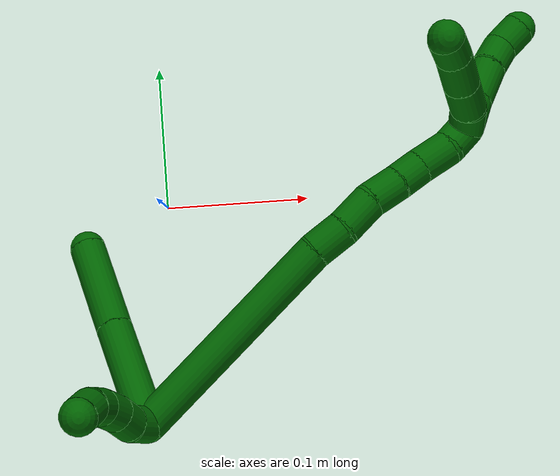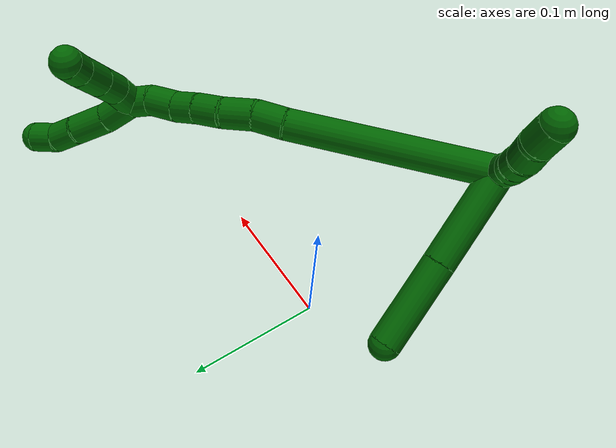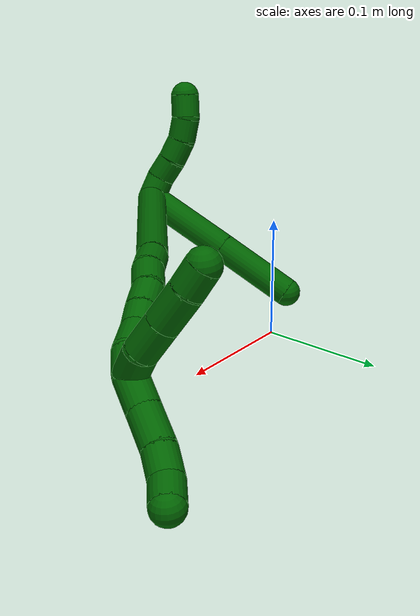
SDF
<sdf version="1.7">
 <world name="default">
  <model name="6">
   <static>0</static>
   <link name="6">
    <collision name="collision-cylinder-e_1_2_8">
     <pose>-0.015532 0.029394 -0.021767 -2.2082 -0.401574 0.767855</pose>
     <geometry><cylinder><radius>0.0125</radius><length>0.079474</length></cylinder></geometry>
     <surface>
      <friction><ode><mu>1.16</mu><mu2>1.16</mu2><slip1>0</slip1><slip2>0</slip2></ode></friction>
      <contact><ode><kp>1e+06</kp><kd>1</kd><max_vel>0</max_vel><min_depth>0.001</min_depth></ode></contact>
     </surface>
    </collision>
    <visual name="visual-cylinder-e_1_2_8">
     <pose>-0.015532 0.029394 -0.021767 -2.2082 -0.401574 0.767855</pose>
     <geometry><cylinder><radius>0.0125</radius><length>0.079474</length></cylinder></geometry>
     <material><ambient>0 0.392157 0.003922 1</ambient></material>
    </visual>
    <collision name="collision-cylinder-e_2_8_6">
     <pose>-0.044521 0.084965 -0.062954 -2.20909 -0.391564 0.750779</pose>
     <geometry><cylinder><radius>0.0125</radius><length>0.070526</length></cylinder></geometry>
     <surface>
      <friction><ode><mu>1.16</mu><mu2>1.16</mu2><slip1>0</slip1><slip2>0</slip2></ode></friction>
      <contact><ode><kp>1e+06</kp><kd>1</kd><max_vel>0</max_vel><min_depth>0.001</min_depth></ode></contact>
     </surface>
    </collision>
    <visual name="visual-cylinder-e_2_8_6">
     <pose>-0.044521 0.084965 -0.062954 -2.20909 -0.391564 0.750779</pose>
     <geometry><cylinder><radius>0.0125</radius><length>0.070526</length></cylinder></geometry>
     <material><ambient>0 0.392157 0.003922 1</ambient></material>
    </visual>
    <collision name="collision-cylinder-e_1_2_9">
     <pose>-0.006084 -1e-05 0.007936 0.001238 -0.654048 -0.00042</pose>
     <geometry><cylinder><radius>0.0125</radius><length>0.02</length></cylinder></geometry>
     <surface>
      <friction><ode><mu>1.16</mu><mu2>1.16</mu2><slip1>0</slip1><slip2>0</slip2></ode></friction>
      <contact><ode><kp>1e+06</kp><kd>1</kd><max_vel>0</max_vel><min_depth>0.001</min_depth></ode></contact>
     </surface>
    </collision>
    <visual name="visual-cylinder-e_1_2_9">
     <pose>-0.006084 -1e-05 0.007936 0.001238 -0.654048 -0.00042</pose>
     <geometry><cylinder><radius>0.0125</radius><length>0.02</length></cylinder></geometry>
     <material><ambient>0 0.392157 0.003922 1</ambient></material>
    </visual>
    <collision name="collision-cylinder-e_2_9_10">
     <pose>-0.017488 0.003167 0.023718 -0.385858 -0.560893 0.112423</pose>
     <geometry><cylinder><radius>0.0125</radius><length>0.02</length></cylinder></geometry>
     <surface>
      <friction><ode><mu>1.16</mu><mu2>1.16</mu2><slip1>0</slip1><slip2>0</slip2></ode></friction>
      <contact><ode><kp>1e+06</kp><kd>1</kd><max_vel>0</max_vel><min_depth>0.001</min_depth></ode></contact>
     </surface>
    </collision>
    <visual name="visual-cylinder-e_2_9_10">
     <pose>-0.017488 0.003167 0.023718 -0.385858 -0.560893 0.112423</pose>
     <geometry><cylinder><radius>0.0125</radius><length>0.02</length></cylinder></geometry>
     <material><ambient>0 0.392157 0.003922 1</ambient></material>
    </visual>
    <collision name="collision-cylinder-e_3_10_11">
     <pose>-0.02806 0.008164 0.039877 -0.214354 -0.553077 0.061051</pose>
     <geometry><cylinder><radius>0.0125</radius><length>0.02</length></cylinder></geometry>
     <surface>
      <friction><ode><mu>1.16</mu><mu2>1.16</mu2><slip1>0</slip1><slip2>0</slip2></ode></friction>
      <contact><ode><kp>1e+06</kp><kd>1</kd><max_vel>0</max_vel><min_depth>0.001</min_depth></ode></contact>
     </surface>
    </collision>
    <visual name="visual-cylinder-e_3_10_11">
     <pose>-0.02806 0.008164 0.039877 -0.214354 -0.553077 0.061051</pose>
     <geometry><cylinder><radius>0.0125</radius><length>0.02</length></cylinder></geometry>
     <material><ambient>0 0.392157 0.003922 1</ambient></material>
    </visual>
    <collision name="collision-cylinder-e_4_11_12">
     <pose>-0.036822 0.010205 0.057553 -0.024702 -0.358553 0.004477</pose>
     <geometry><cylinder><radius>0.0125</radius><length>0.02</length></cylinder></geometry>
     <surface>
      <friction><ode><mu>1.16</mu><mu2>1.16</mu2><slip1>0</slip1><slip2>0</slip2></ode></friction>
      <contact><ode><kp>1e+06</kp><kd>1</kd><max_vel>0</max_vel><min_depth>0.001</min_depth></ode></contact>
     </surface>
    </collision>
    <visual name="visual-cylinder-e_4_11_12">
     <pose>-0.036822 0.010205 0.057553 -0.024702 -0.358553 0.004477</pose>
     <geometry><cylinder><radius>0.0125</radius><length>0.02</length></cylinder></geometry>
     <material><ambient>0 0.392157 0.003922 1</ambient></material>
    </visual>
    <collision name="collision-cylinder-e_5_12_5">
     <pose>-0.043206 0.007605 0.076064 0.300105 -0.291569 -0.04439</pose>
     <geometry><cylinder><radius>0.0125</radius><length>0.02</length></cylinder></geometry>
     <surface>
      <friction><ode><mu>1.16</mu><mu2>1.16</mu2><slip1>0</slip1><slip2>0</slip2></ode></friction>
      <contact><ode><kp>1e+06</kp><kd>1</kd><max_vel>0</max_vel><min_depth>0.001</min_depth></ode></contact>
     </surface>
    </collision>
    <visual name="visual-cylinder-e_5_12_5">
     <pose>-0.043206 0.007605 0.076064 0.300105 -0.291569 -0.04439</pose>
     <geometry><cylinder><radius>0.0125</radius><length>0.02</length></cylinder></geometry>
     <material><ambient>0 0.392157 0.003922 1</ambient></material>
    </visual>
    <collision name="collision-cylinder-e_1_2_13">
     <pose>0.045489 0.065317 0.007159 -1.46163 0.605526 -0.546021</pose>
     <geometry><cylinder><radius>0.0125</radius><length>0.159835</length></cylinder></geometry>
     <surface>
      <friction><ode><mu>1.16</mu><mu2>1.16</mu2><slip1>0</slip1><slip2>0</slip2></ode></friction>
      <contact><ode><kp>1e+06</kp><kd>1</kd><max_vel>0</max_vel><min_depth>0.001</min_depth></ode></contact>
     </surface>
    </collision>
    <visual name="visual-cylinder-e_1_2_13">
     <pose>0.045489 0.065317 0.007159 -1.46163 0.605526 -0.546021</pose>
     <geometry><cylinder><radius>0.0125</radius><length>0.159835</length></cylinder></geometry>
     <material><ambient>0 0.392157 0.003922 1</ambient></material>
    </visual>
    <collision name="collision-cylinder-e_2_13_14">
     <pose>0.099355 0.139653 0.014804 -1.51688 0.747885 -0.711921</pose>
     <geometry><cylinder><radius>0.0125</radius><length>0.024638</length></cylinder></geometry>
     <surface>
      <friction><ode><mu>1.16</mu><mu2>1.16</mu2><slip1>0</slip1><slip2>0</slip2></ode></friction>
      <contact><ode><kp>1e+06</kp><kd>1</kd><max_vel>0</max_vel><min_depth>0.001</min_depth></ode></contact>
     </surface>
    </collision>
    <visual name="visual-cylinder-e_2_13_14">
     <pose>0.099355 0.139653 0.014804 -1.51688 0.747885 -0.711921</pose>
     <geometry><cylinder><radius>0.0125</radius><length>0.024638</length></cylinder></geometry>
     <material><ambient>0 0.392157 0.003922 1</ambient></material>
    </visual>
    <collision name="collision-cylinder-e_3_14_15">
     <pose>0.115323 0.159252 0.013767 -1.7138 0.61738 -0.705395</pose>
     <geometry><cylinder><radius>0.0125</radius><length>0.02622</length></cylinder></geometry>
     <surface>
      <friction><ode><mu>1.16</mu><mu2>1.16</mu2><slip1>0</slip1><slip2>0</slip2></ode></friction>
      <contact><ode><kp>1e+06</kp><kd>1</kd><max_vel>0</max_vel><min_depth>0.001</min_depth></ode></contact>
     </surface>
    </collision>
    <visual name="visual-cylinder-e_3_14_15">
     <pose>0.115323 0.159252 0.013767 -1.7138 0.61738 -0.705395</pose>
     <geometry><cylinder><radius>0.0125</radius><length>0.02622</length></cylinder></geometry>
     <material><ambient>0 0.392157 0.003922 1</ambient></material>
    </visual>
    <collision name="collision-cylinder-e_4_15_16">
     <pose>0.131613 0.177517 0.009939 -1.86224 0.825955 -1.06446</pose>
     <geometry><cylinder><radius>0.0125</radius><length>0.02367</length></cylinder></geometry>
     <surface>
      <friction><ode><mu>1.16</mu><mu2>1.16</mu2><slip1>0</slip1><slip2>0</slip2></ode></friction>
      <contact><ode><kp>1e+06</kp><kd>1</kd><max_vel>0</max_vel><min_depth>0.001</min_depth></ode></contact>
     </surface>
    </collision>
    <visual name="visual-cylinder-e_4_15_16">
     <pose>0.131613 0.177517 0.009939 -1.86224 0.825955 -1.06446</pose>
     <geometry><cylinder><radius>0.0125</radius><length>0.02367</length></cylinder></geometry>
     <material><ambient>0 0.392157 0.003922 1</ambient></material>
    </visual>
    <collision name="collision-cylinder-e_5_16_17">
     <pose>0.147298 0.191967 0.005096 -1.92956 0.768304 -1.05611</pose>
     <geometry><cylinder><radius>0.0125</radius><length>0.020099</length></cylinder></geometry>
     <surface>
      <friction><ode><mu>1.16</mu><mu2>1.16</mu2><slip1>0</slip1><slip2>0</slip2></ode></friction>
      <contact><ode><kp>1e+06</kp><kd>1</kd><max_vel>0</max_vel><min_depth>0.001</min_depth></ode></contact>
     </surface>
    </collision>
    <visual name="visual-cylinder-e_5_16_17">
     <pose>0.147298 0.191967 0.005096 -1.92956 0.768304 -1.05611</pose>
     <geometry><cylinder><radius>0.0125</radius><length>0.020099</length></cylinder></geometry>
     <material><ambient>0 0.392157 0.003922 1</ambient></material>
    </visual>
    <collision name="collision-cylinder-e_6_17_18">
     <pose>0.163627 0.207091 0.001247 -1.72648 0.835128 -0.957017</pose>
     <geometry><cylinder><radius>0.0125</radius><length>0.025211</length></cylinder></geometry>
     <surface>
      <friction><ode><mu>1.16</mu><mu2>1.16</mu2><slip1>0</slip1><slip2>0</slip2></ode></friction>
      <contact><ode><kp>1e+06</kp><kd>1</kd><max_vel>0</max_vel><min_depth>0.001</min_depth></ode></contact>
     </surface>
    </collision>
    <visual name="visual-cylinder-e_6_17_18">
     <pose>0.163627 0.207091 0.001247 -1.72648 0.835128 -0.957017</pose>
     <geometry><cylinder><radius>0.0125</radius><length>0.025211</length></cylinder></geometry>
     <material><ambient>0 0.392157 0.003922 1</ambient></material>
    </visual>
    <collision name="collision-cylinder-e_7_18_1">
     <pose>0.178587 0.223373 -0.003058 -1.93199 0.585249 -0.822077</pose>
     <geometry><cylinder><radius>0.0125</radius><length>0.020327</length></cylinder></geometry>
     <surface>
      <friction><ode><mu>1.16</mu><mu2>1.16</mu2><slip1>0</slip1><slip2>0</slip2></ode></friction>
      <contact><ode><kp>1e+06</kp><kd>1</kd><max_vel>0</max_vel><min_depth>0.001</min_depth></ode></contact>
     </surface>
    </collision>
    <visual name="visual-cylinder-e_7_18_1">
     <pose>0.178587 0.223373 -0.003058 -1.93199 0.585249 -0.822077</pose>
     <geometry><cylinder><radius>0.0125</radius><length>0.020327</length></cylinder></geometry>
     <material><ambient>0 0.392157 0.003922 1</ambient></material>
    </visual>
    <collision name="collision-cylinder-e_1_1_19">
     <pose>0.182029 0.236803 0.004222 -0.491878 -0.184264 0.046377</pose>
     <geometry><cylinder><radius>0.0125</radius><length>0.023714</length></cylinder></geometry>
     <surface>
      <friction><ode><mu>1.16</mu><mu2>1.16</mu2><slip1>0</slip1><slip2>0</slip2></ode></friction>
      <contact><ode><kp>1e+06</kp><kd>1</kd><max_vel>0</max_vel><min_depth>0.001</min_depth></ode></contact>
     </surface>
    </collision>
    <visual name="visual-cylinder-e_1_1_19">
     <pose>0.182029 0.236803 0.004222 -0.491878 -0.184264 0.046377</pose>
     <geometry><cylinder><radius>0.0125</radius><length>0.023714</length></cylinder></geometry>
     <material><ambient>0 0.392157 0.003922 1</ambient></material>
    </visual>
    <collision name="collision-cylinder-e_2_19_20">
     <pose>0.174171 0.248452 0.025026 -0.528121 -0.436322 0.119735</pose>
     <geometry><cylinder><radius>0.0125</radius><length>0.026903</length></cylinder></geometry>
     <surface>
      <friction><ode><mu>1.16</mu><mu2>1.16</mu2><slip1>0</slip1><slip2>0</slip2></ode></friction>
      <contact><ode><kp>1e+06</kp><kd>1</kd><max_vel>0</max_vel><min_depth>0.001</min_depth></ode></contact>
     </surface>
    </collision>
    <visual name="visual-cylinder-e_2_19_20">
     <pose>0.174171 0.248452 0.025026 -0.528121 -0.436322 0.119735</pose>
     <geometry><cylinder><radius>0.0125</radius><length>0.026903</length></cylinder></geometry>
     <material><ambient>0 0.392157 0.003922 1</ambient></material>
    </visual>
    <collision name="collision-cylinder-e_3_20_21">
     <pose>0.162354 0.261338 0.047013 -0.531969 -0.432261 0.119491</pose>
     <geometry><cylinder><radius>0.0125</radius><length>0.029279</length></cylinder></geometry>
     <surface>
      <friction><ode><mu>1.16</mu><mu2>1.16</mu2><slip1>0</slip1><slip2>0</slip2></ode></friction>
      <contact><ode><kp>1e+06</kp><kd>1</kd><max_vel>0</max_vel><min_depth>0.001</min_depth></ode></contact>
     </surface>
    </collision>
    <visual name="visual-cylinder-e_3_20_21">
     <pose>0.162354 0.261338 0.047013 -0.531969 -0.432261 0.119491</pose>
     <geometry><cylinder><radius>0.0125</radius><length>0.029279</length></cylinder></geometry>
     <material><ambient>0 0.392157 0.003922 1</ambient></material>
    </visual>
    <collision name="collision-cylinder-e_4_21_4">
     <pose>0.151531 0.271819 0.066536 -0.434021 -0.48538 0.109061</pose>
     <geometry><cylinder><radius>0.0125</radius><length>0.020104</length></cylinder></geometry>
     <surface>
      <friction><ode><mu>1.16</mu><mu2>1.16</mu2><slip1>0</slip1><slip2>0</slip2></ode></friction>
      <contact><ode><kp>1e+06</kp><kd>1</kd><max_vel>0</max_vel><min_depth>0.001</min_depth></ode></contact>
     </surface>
    </collision>
    <visual name="visual-cylinder-e_4_21_4">
     <pose>0.151531 0.271819 0.066536 -0.434021 -0.48538 0.109061</pose>
     <geometry><cylinder><radius>0.0125</radius><length>0.020104</length></cylinder></geometry>
     <material><ambient>0 0.392157 0.003922 1</ambient></material>
    </visual>
    <collision name="collision-cylinder-e_1_1_22">
     <pose>0.187251 0.242175 -0.013471 -2.16936 0.227646 -0.426118</pose>
     <geometry><cylinder><radius>0.0125</radius><length>0.027029</length></cylinder></geometry>
     <surface>
      <friction><ode><mu>1.16</mu><mu2>1.16</mu2><slip1>0</slip1><slip2>0</slip2></ode></friction>
      <contact><ode><kp>1e+06</kp><kd>1</kd><max_vel>0</max_vel><min_depth>0.001</min_depth></ode></contact>
     </surface>
    </collision>
    <visual name="visual-cylinder-e_1_1_22">
     <pose>0.187251 0.242175 -0.013471 -2.16936 0.227646 -0.426118</pose>
     <geometry><cylinder><radius>0.0125</radius><length>0.027029</length></cylinder></geometry>
     <material><ambient>0 0.392157 0.003922 1</ambient></material>
    </visual>
    <collision name="collision-cylinder-e_2_22_23">
     <pose>0.194686 0.266318 -0.02691 -1.99684 0.292371 -0.44931</pose>
     <geometry><cylinder><radius>0.0125</radius><length>0.030429</length></cylinder></geometry>
     <surface>
      <friction><ode><mu>1.16</mu><mu2>1.16</mu2><slip1>0</slip1><slip2>0</slip2></ode></friction>
      <contact><ode><kp>1e+06</kp><kd>1</kd><max_vel>0</max_vel><min_depth>0.001</min_depth></ode></contact>
     </surface>
    </collision>
    <visual name="visual-cylinder-e_2_22_23">
     <pose>0.194686 0.266318 -0.02691 -1.99684 0.292371 -0.44931</pose>
     <geometry><cylinder><radius>0.0125</radius><length>0.030429</length></cylinder></geometry>
     <material><ambient>0 0.392157 0.003922 1</ambient></material>
    </visual>
    <collision name="collision-cylinder-e_3_23_24">
     <pose>0.203267 0.288206 -0.038026 -2.1046 0.396803 -0.67756</pose>
     <geometry><cylinder><radius>0.0125</radius><length>0.021715</length></cylinder></geometry>
     <surface>
      <friction><ode><mu>1.16</mu><mu2>1.16</mu2><slip1>0</slip1><slip2>0</slip2></ode></friction>
      <contact><ode><kp>1e+06</kp><kd>1</kd><max_vel>0</max_vel><min_depth>0.001</min_depth></ode></contact>
     </surface>
    </collision>
    <visual name="visual-cylinder-e_3_23_24">
     <pose>0.203267 0.288206 -0.038026 -2.1046 0.396803 -0.67756</pose>
     <geometry><cylinder><radius>0.0125</radius><length>0.021715</length></cylinder></geometry>
     <material><ambient>0 0.392157 0.003922 1</ambient></material>
    </visual>
    <collision name="collision-cylinder-e_4_24_3">
     <pose>0.213458 0.305103 -0.045126 -1.80838 0.613351 -0.765321</pose>
     <geometry><cylinder><radius>0.0125</radius><length>0.020827</length></cylinder></geometry>
     <surface>
      <friction><ode><mu>1.16</mu><mu2>1.16</mu2><slip1>0</slip1><slip2>0</slip2></ode></friction>
      <contact><ode><kp>1e+06</kp><kd>1</kd><max_vel>0</max_vel><min_depth>0.001</min_depth></ode></contact>
     </surface>
    </collision>
    <visual name="visual-cylinder-e_4_24_3">
     <pose>0.213458 0.305103 -0.045126 -1.80838 0.613351 -0.765321</pose>
     <geometry><cylinder><radius>0.0125</radius><length>0.020827</length></cylinder></geometry>
     <material><ambient>0 0.392157 0.003922 1</ambient></material>
    </visual>
    <collision name="collision-sphere-3">
     <pose>0.219452 0.313379 -0.04713 0 -0 0</pose>
     <geometry><sphere><radius>0.0125</radius></sphere></geometry>
     <surface>
      <friction><ode><mu>1.16</mu><mu2>1.16</mu2><slip1>0</slip1><slip2>0</slip2></ode></friction>
      <contact><ode><kp>1e+06</kp><kd>1</kd><max_vel>0</max_vel><min_depth>0.001</min_depth></ode></contact>
     </surface>
    </collision>
    <visual name="visual-sphere-3">
     <pose>0.219452 0.313379 -0.04713 0 -0 0</pose>
     <geometry><sphere><radius>0.0125</radius></sphere></geometry>
     <material><ambient>0 0.392157 0.003922 1</ambient></material>
    </visual>
    <collision name="collision-sphere-24">
     <pose>0.207463 0.296826 -0.043121 0 -0 0</pose>
     <geometry><sphere><radius>0.0125</radius></sphere></geometry>
     <surface>
      <friction><ode><mu>1.16</mu><mu2>1.16</mu2><slip1>0</slip1><slip2>0</slip2></ode></friction>
      <contact><ode><kp>1e+06</kp><kd>1</kd><max_vel>0</max_vel><min_depth>0.001</min_depth></ode></contact>
     </surface>
    </collision>
    <visual name="visual-sphere-24">
     <pose>0.207463 0.296826 -0.043121 0 -0 0</pose>
     <geometry><sphere><radius>0.0125</radius></sphere></geometry>
     <material><ambient>0 0.392157 0.003922 1</ambient></material>
    </visual>
    <collision name="collision-sphere-23">
     <pose>0.199071 0.279585 -0.032931 0 -0 0</pose>
     <geometry><sphere><radius>0.0125</radius></sphere></geometry>
     <surface>
      <friction><ode><mu>1.16</mu><mu2>1.16</mu2><slip1>0</slip1><slip2>0</slip2></ode></friction>
      <contact><ode><kp>1e+06</kp><kd>1</kd><max_vel>0</max_vel><min_depth>0.001</min_depth></ode></contact>
     </surface>
    </collision>
    <visual name="visual-sphere-23">
     <pose>0.199071 0.279585 -0.032931 0 -0 0</pose>
     <geometry><sphere><radius>0.0125</radius></sphere></geometry>
     <material><ambient>0 0.392157 0.003922 1</ambient></material>
    </visual>
    <collision name="collision-sphere-22">
     <pose>0.190301 0.253052 -0.020889 0 -0 0</pose>
     <geometry><sphere><radius>0.0125</radius></sphere></geometry>
     <surface>
      <friction><ode><mu>1.16</mu><mu2>1.16</mu2><slip1>0</slip1><slip2>0</slip2></ode></friction>
      <contact><ode><kp>1e+06</kp><kd>1</kd><max_vel>0</max_vel><min_depth>0.001</min_depth></ode></contact>
     </surface>
    </collision>
    <visual name="visual-sphere-22">
     <pose>0.190301 0.253052 -0.020889 0 -0 0</pose>
     <geometry><sphere><radius>0.0125</radius></sphere></geometry>
     <material><ambient>0 0.392157 0.003922 1</ambient></material>
    </visual>
    <collision name="collision-sphere-4">
     <pose>0.146841 0.275558 0.074602 0 -0 0</pose>
     <geometry><sphere><radius>0.0125</radius></sphere></geometry>
     <surface>
      <friction><ode><mu>1.16</mu><mu2>1.16</mu2><slip1>0</slip1><slip2>0</slip2></ode></friction>
      <contact><ode><kp>1e+06</kp><kd>1</kd><max_vel>0</max_vel><min_depth>0.001</min_depth></ode></contact>
     </surface>
    </collision>
    <visual name="visual-sphere-4">
     <pose>0.146841 0.275558 0.074602 0 -0 0</pose>
     <geometry><sphere><radius>0.0125</radius></sphere></geometry>
     <material><ambient>0 0.392157 0.003922 1</ambient></material>
    </visual>
    <collision name="collision-sphere-21">
     <pose>0.156221 0.26808 0.058469 0 -0 0</pose>
     <geometry><sphere><radius>0.0125</radius></sphere></geometry>
     <surface>
      <friction><ode><mu>1.16</mu><mu2>1.16</mu2><slip1>0</slip1><slip2>0</slip2></ode></friction>
      <contact><ode><kp>1e+06</kp><kd>1</kd><max_vel>0</max_vel><min_depth>0.001</min_depth></ode></contact>
     </surface>
    </collision>
    <visual name="visual-sphere-21">
     <pose>0.156221 0.26808 0.058469 0 -0 0</pose>
     <geometry><sphere><radius>0.0125</radius></sphere></geometry>
     <material><ambient>0 0.392157 0.003922 1</ambient></material>
    </visual>
    <collision name="collision-sphere-20">
     <pose>0.168487 0.254595 0.035557 0 -0 0</pose>
     <geometry><sphere><radius>0.0125</radius></sphere></geometry>
     <surface>
      <friction><ode><mu>1.16</mu><mu2>1.16</mu2><slip1>0</slip1><slip2>0</slip2></ode></friction>
      <contact><ode><kp>1e+06</kp><kd>1</kd><max_vel>0</max_vel><min_depth>0.001</min_depth></ode></contact>
     </surface>
    </collision>
    <visual name="visual-sphere-20">
     <pose>0.168487 0.254595 0.035557 0 -0 0</pose>
     <geometry><sphere><radius>0.0125</radius></sphere></geometry>
     <material><ambient>0 0.392157 0.003922 1</ambient></material>
    </visual>
    <collision name="collision-sphere-11">
     <pose>-0.033313 0.009974 0.048192 0 -0 0</pose>
     <geometry><sphere><radius>0.0125</radius></sphere></geometry>
     <surface>
      <friction><ode><mu>1.16</mu><mu2>1.16</mu2><slip1>0</slip1><slip2>0</slip2></ode></friction>
      <contact><ode><kp>1e+06</kp><kd>1</kd><max_vel>0</max_vel><min_depth>0.001</min_depth></ode></contact>
     </surface>
    </collision>
    <visual name="visual-sphere-11">
     <pose>-0.033313 0.009974 0.048192 0 -0 0</pose>
     <geometry><sphere><radius>0.0125</radius></sphere></geometry>
     <material><ambient>0 0.392157 0.003922 1</ambient></material>
    </visual>
    <collision name="collision-sphere-10">
     <pose>-0.022807 0.006354 0.031563 0 -0 0</pose>
     <geometry><sphere><radius>0.0125</radius></sphere></geometry>
     <surface>
      <friction><ode><mu>1.16</mu><mu2>1.16</mu2><slip1>0</slip1><slip2>0</slip2></ode></friction>
      <contact><ode><kp>1e+06</kp><kd>1</kd><max_vel>0</max_vel><min_depth>0.001</min_depth></ode></contact>
     </surface>
    </collision>
    <visual name="visual-sphere-10">
     <pose>-0.022807 0.006354 0.031563 0 -0 0</pose>
     <geometry><sphere><radius>0.0125</radius></sphere></geometry>
     <material><ambient>0 0.392157 0.003922 1</ambient></material>
    </visual>
    <collision name="collision-sphere-6">
     <pose>-0.057979 0.111141 -0.082374 0 -0 0</pose>
     <geometry><sphere><radius>0.0125</radius></sphere></geometry>
     <surface>
      <friction><ode><mu>1.16</mu><mu2>1.16</mu2><slip1>0</slip1><slip2>0</slip2></ode></friction>
      <contact><ode><kp>1e+06</kp><kd>1</kd><max_vel>0</max_vel><min_depth>0.001</min_depth></ode></contact>
     </surface>
    </collision>
    <visual name="visual-sphere-6">
     <pose>-0.057979 0.111141 -0.082374 0 -0 0</pose>
     <geometry><sphere><radius>0.0125</radius></sphere></geometry>
     <material><ambient>0 0.392157 0.003922 1</ambient></material>
    </visual>
    <collision name="collision-sphere-9">
     <pose>-0.012168 -2e-05 0.015873 0 -0 0</pose>
     <geometry><sphere><radius>0.0125</radius></sphere></geometry>
     <surface>
      <friction><ode><mu>1.16</mu><mu2>1.16</mu2><slip1>0</slip1><slip2>0</slip2></ode></friction>
      <contact><ode><kp>1e+06</kp><kd>1</kd><max_vel>0</max_vel><min_depth>0.001</min_depth></ode></contact>
     </surface>
    </collision>
    <visual name="visual-sphere-9">
     <pose>-0.012168 -2e-05 0.015873 0 -0 0</pose>
     <geometry><sphere><radius>0.0125</radius></sphere></geometry>
     <material><ambient>0 0.392157 0.003922 1</ambient></material>
    </visual>
    <collision name="collision-sphere-2">
     <geometry><sphere><radius>0.0125</radius></sphere></geometry>
     <surface>
      <friction><ode><mu>1.16</mu><mu2>1.16</mu2><slip1>0</slip1><slip2>0</slip2></ode></friction>
      <contact><ode><kp>1e+06</kp><kd>1</kd><max_vel>0</max_vel><min_depth>0.001</min_depth></ode></contact>
     </surface>
    </collision>
    <visual name="visual-sphere-2">
     <geometry><sphere><radius>0.0125</radius></sphere></geometry>
     <material><ambient>0 0.392157 0.003922 1</ambient></material>
    </visual>
    <collision name="collision-sphere-19">
     <pose>0.179856 0.242308 0.014496 0 -0 0</pose>
     <geometry><sphere><radius>0.0125</radius></sphere></geometry>
     <surface>
      <friction><ode><mu>1.16</mu><mu2>1.16</mu2><slip1>0</slip1><slip2>0</slip2></ode></friction>
      <contact><ode><kp>1e+06</kp><kd>1</kd><max_vel>0</max_vel><min_depth>0.001</min_depth></ode></contact>
     </surface>
    </collision>
    <visual name="visual-sphere-19">
     <pose>0.179856 0.242308 0.014496 0 -0 0</pose>
     <geometry><sphere><radius>0.0125</radius></sphere></geometry>
     <material><ambient>0 0.392157 0.003922 1</ambient></material>
    </visual>
    <collision name="collision-sphere-8">
     <pose>-0.031064 0.058788 -0.043533 0 -0 0</pose>
     <geometry><sphere><radius>0.0125</radius></sphere></geometry>
     <surface>
      <friction><ode><mu>1.16</mu><mu2>1.16</mu2><slip1>0</slip1><slip2>0</slip2></ode></friction>
      <contact><ode><kp>1e+06</kp><kd>1</kd><max_vel>0</max_vel><min_depth>0.001</min_depth></ode></contact>
     </surface>
    </collision>
    <visual name="visual-sphere-8">
     <pose>-0.031064 0.058788 -0.043533 0 -0 0</pose>
     <geometry><sphere><radius>0.0125</radius></sphere></geometry>
     <material><ambient>0 0.392157 0.003922 1</ambient></material>
    </visual>
    <collision name="collision-sphere-12">
     <pose>-0.040331 0.010437 0.066914 0 -0 0</pose>
     <geometry><sphere><radius>0.0125</radius></sphere></geometry>
     <surface>
      <friction><ode><mu>1.16</mu><mu2>1.16</mu2><slip1>0</slip1><slip2>0</slip2></ode></friction>
      <contact><ode><kp>1e+06</kp><kd>1</kd><max_vel>0</max_vel><min_depth>0.001</min_depth></ode></contact>
     </surface>
    </collision>
    <visual name="visual-sphere-12">
     <pose>-0.040331 0.010437 0.066914 0 -0 0</pose>
     <geometry><sphere><radius>0.0125</radius></sphere></geometry>
     <material><ambient>0 0.392157 0.003922 1</ambient></material>
    </visual>
    <collision name="collision-sphere-5">
     <pose>-0.046081 0.004774 0.085214 0 -0 0</pose>
     <geometry><sphere><radius>0.0125</radius></sphere></geometry>
     <surface>
      <friction><ode><mu>1.16</mu><mu2>1.16</mu2><slip1>0</slip1><slip2>0</slip2></ode></friction>
      <contact><ode><kp>1e+06</kp><kd>1</kd><max_vel>0</max_vel><min_depth>0.001</min_depth></ode></contact>
     </surface>
    </collision>
    <visual name="visual-sphere-5">
     <pose>-0.046081 0.004774 0.085214 0 -0 0</pose>
     <geometry><sphere><radius>0.0125</radius></sphere></geometry>
     <material><ambient>0 0.392157 0.003922 1</ambient></material>
    </visual>
    <collision name="collision-sphere-13">
     <pose>0.090977 0.130635 0.014317 0 -0 0</pose>
     <geometry><sphere><radius>0.0125</radius></sphere></geometry>
     <surface>
      <friction><ode><mu>1.16</mu><mu2>1.16</mu2><slip1>0</slip1><slip2>0</slip2></ode></friction>
      <contact><ode><kp>1e+06</kp><kd>1</kd><max_vel>0</max_vel><min_depth>0.001</min_depth></ode></contact>
     </surface>
    </collision>
    <visual name="visual-sphere-13">
     <pose>0.090977 0.130635 0.014317 0 -0 0</pose>
     <geometry><sphere><radius>0.0125</radius></sphere></geometry>
     <material><ambient>0 0.392157 0.003922 1</ambient></material>
    </visual>
    <collision name="collision-sphere-14">
     <pose>0.107733 0.148671 0.015291 0 -0 0</pose>
     <geometry><sphere><radius>0.0125</radius></sphere></geometry>
     <surface>
      <friction><ode><mu>1.16</mu><mu2>1.16</mu2><slip1>0</slip1><slip2>0</slip2></ode></friction>
      <contact><ode><kp>1e+06</kp><kd>1</kd><max_vel>0</max_vel><min_depth>0.001</min_depth></ode></contact>
     </surface>
    </collision>
    <visual name="visual-sphere-14">
     <pose>0.107733 0.148671 0.015291 0 -0 0</pose>
     <geometry><sphere><radius>0.0125</radius></sphere></geometry>
     <material><ambient>0 0.392157 0.003922 1</ambient></material>
    </visual>
    <collision name="collision-sphere-15">
     <pose>0.122912 0.169833 0.012244 0 -0 0</pose>
     <geometry><sphere><radius>0.0125</radius></sphere></geometry>
     <surface>
      <friction><ode><mu>1.16</mu><mu2>1.16</mu2><slip1>0</slip1><slip2>0</slip2></ode></friction>
      <contact><ode><kp>1e+06</kp><kd>1</kd><max_vel>0</max_vel><min_depth>0.001</min_depth></ode></contact>
     </surface>
    </collision>
    <visual name="visual-sphere-15">
     <pose>0.122912 0.169833 0.012244 0 -0 0</pose>
     <geometry><sphere><radius>0.0125</radius></sphere></geometry>
     <material><ambient>0 0.392157 0.003922 1</ambient></material>
    </visual>
    <collision name="collision-sphere-16">
     <pose>0.140314 0.185201 0.007634 0 -0 0</pose>
     <geometry><sphere><radius>0.0125</radius></sphere></geometry>
     <surface>
      <friction><ode><mu>1.16</mu><mu2>1.16</mu2><slip1>0</slip1><slip2>0</slip2></ode></friction>
      <contact><ode><kp>1e+06</kp><kd>1</kd><max_vel>0</max_vel><min_depth>0.001</min_depth></ode></contact>
     </surface>
    </collision>
    <visual name="visual-sphere-16">
     <pose>0.140314 0.185201 0.007634 0 -0 0</pose>
     <geometry><sphere><radius>0.0125</radius></sphere></geometry>
     <material><ambient>0 0.392157 0.003922 1</ambient></material>
    </visual>
    <collision name="collision-sphere-17">
     <pose>0.154281 0.198734 0.002559 0 -0 0</pose>
     <geometry><sphere><radius>0.0125</radius></sphere></geometry>
     <surface>
      <friction><ode><mu>1.16</mu><mu2>1.16</mu2><slip1>0</slip1><slip2>0</slip2></ode></friction>
      <contact><ode><kp>1e+06</kp><kd>1</kd><max_vel>0</max_vel><min_depth>0.001</min_depth></ode></contact>
     </surface>
    </collision>
    <visual name="visual-sphere-17">
     <pose>0.154281 0.198734 0.002559 0 -0 0</pose>
     <geometry><sphere><radius>0.0125</radius></sphere></geometry>
     <material><ambient>0 0.392157 0.003922 1</ambient></material>
    </visual>
    <collision name="collision-sphere-18">
     <pose>0.172972 0.215447 -6.4e-05 0 -0 0</pose>
     <geometry><sphere><radius>0.0125</radius></sphere></geometry>
     <surface>
      <friction><ode><mu>1.16</mu><mu2>1.16</mu2><slip1>0</slip1><slip2>0</slip2></ode></friction>
      <contact><ode><kp>1e+06</kp><kd>1</kd><max_vel>0</max_vel><min_depth>0.001</min_depth></ode></contact>
     </surface>
    </collision>
    <visual name="visual-sphere-18">
     <pose>0.172972 0.215447 -6.4e-05 0 -0 0</pose>
     <geometry><sphere><radius>0.0125</radius></sphere></geometry>
     <material><ambient>0 0.392157 0.003922 1</ambient></material>
    </visual>
    <collision name="collision-sphere-1">
     <pose>0.184201 0.231298 -0.006052 0 -0 0</pose>
     <geometry><sphere><radius>0.0125</radius></sphere></geometry>
     <surface>
      <friction><ode><mu>1.16</mu><mu2>1.16</mu2><slip1>0</slip1><slip2>0</slip2></ode></friction>
      <contact><ode><kp>1e+06</kp><kd>1</kd><max_vel>0</max_vel><min_depth>0.001</min_depth></ode></contact>
     </surface>
    </collision>
    <visual name="visual-sphere-1">
     <pose>0.184201 0.231298 -0.006052 0 -0 0</pose>
     <geometry><sphere><radius>0.0125</radius></sphere></geometry>
     <material><ambient>0 0.392157 0.003922 1</ambient></material>
    </visual>
    <inertial>
     <pose>0.074951 0.129956 0.000866 0 -0 0</pose>
     <mass>0.75</mass>
     <inertia><ixx>0.00022</ixx><ixy>0</ixy><ixz>0</ixz><iyy>6.3e-05</iyy><iyz>0</iyz><izz>-0.00053</izz></inertia>
    </inertial>
   </link>
   <pose>-0.016753 -0.148889 0.086169 -0.000735 0.122004 -0.222391</pose>
  </model>
 </world>
</sdf>
